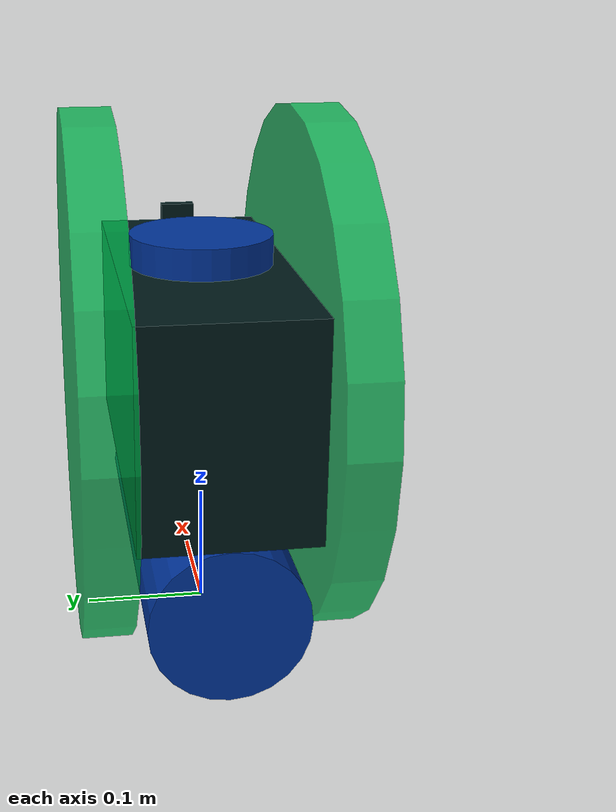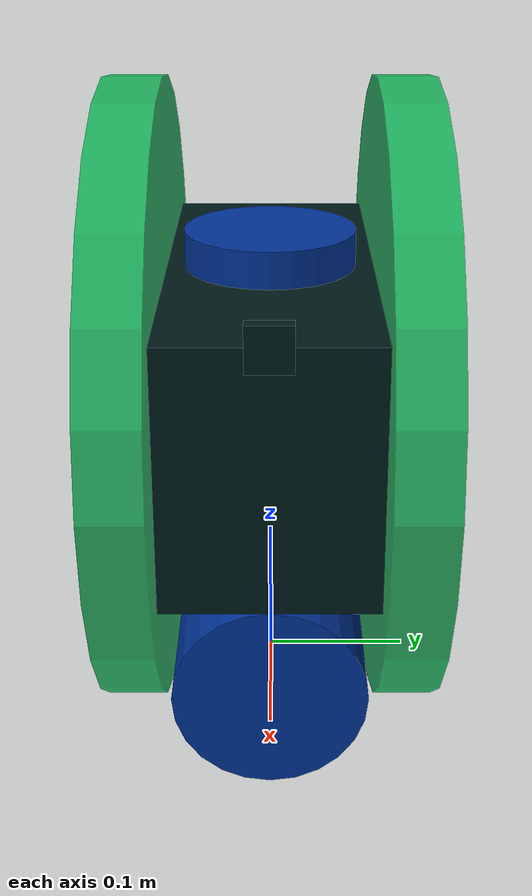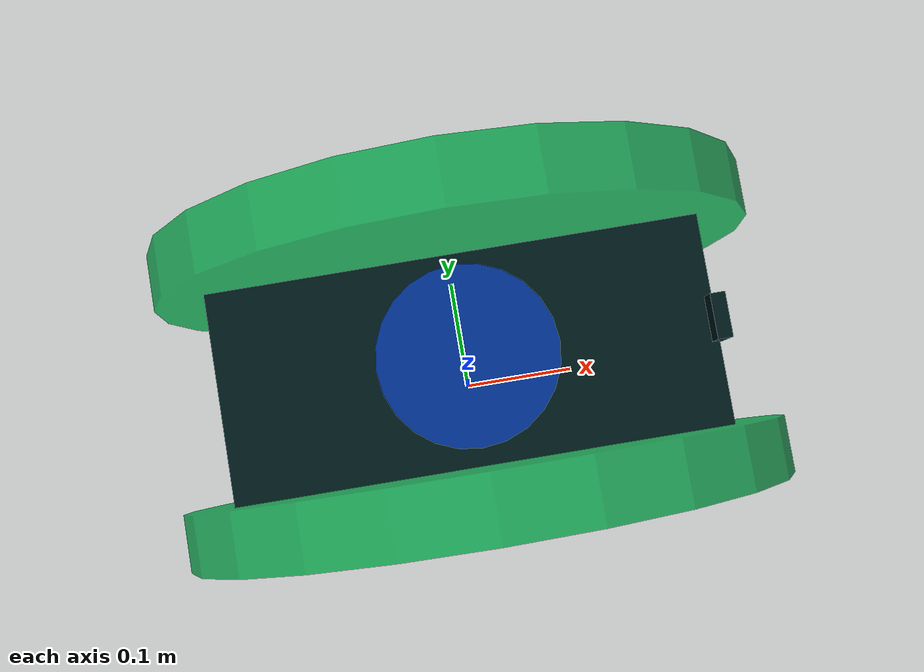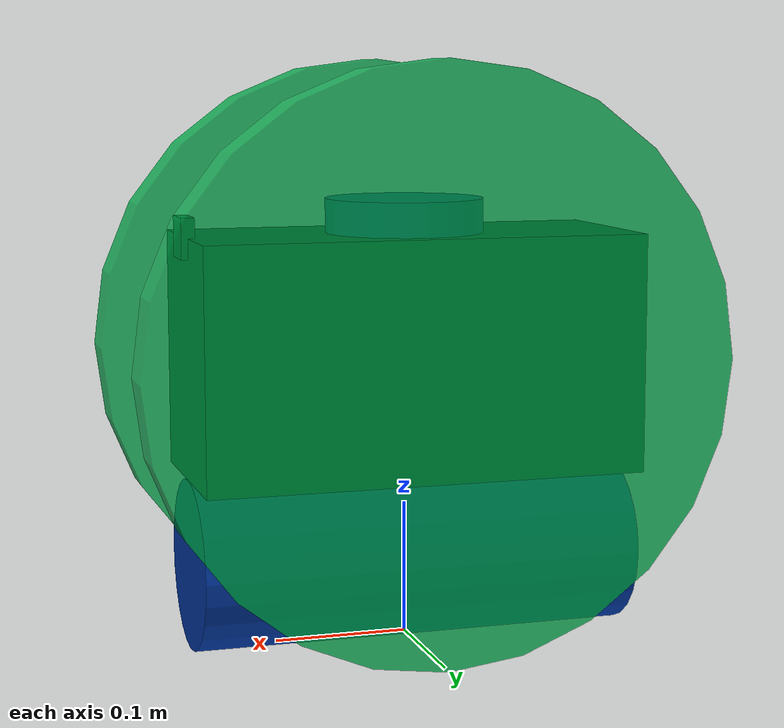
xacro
<?xml version="1.0"?>
<robot xmlns:xacro="http://www.ros.org/wiki/xacro"  name="robot">

    <xacro:include filename="inertial_macros.xacro"/>

    <xacro:property name="ratio" value="0.0254"/>
    <xacro:property name="chassis_length" value="13.00"/>
    <xacro:property name="chassis_width" value="5.5625"/>
    <xacro:property name="chassis_height" value="7.00"/>
    <xacro:property name="chassis_mass" value="3.0"/>
    <xacro:property name="valve_radius" value="2.5"/>
    <xacro:property name="wheel_radius" value="8.50"/>
    <xacro:property name="wheel_thickness" value="1.5625"/>
    <xacro:property name="wheel_mass" value="0.5"/>
    <xacro:property name="wheel_offset_x" value="0.226"/>
    <xacro:property name="wheel_offset_y" value="${chassis_width*ratio/2}"/>
    <xacro:property name="wheel_offset_z" value="${wheel_radius*ratio}"/>

    <material name="green">
        <color rgba="0 0.7 0.3 0.8" />
    </material>

    <material name="blue">
        <color rgba="0 0.2 0.6 0.9"/>
    </material>

    <material name="black">
        <color rgba="0 0.1 0.1 1"/>
    </material>

    <!-- BASE LINK -->

    <link name="base_link">

    </link>

    <!-- BASE_FOOTPRINT LINK -->

    <joint name="base_footprint_joint" type="fixed">
        <parent link="base_link"/>
        <child link="base_footprint"/>
        <origin xyz="0 0 0" rpy="0 0 0"/>
    </joint>

    <link name="base_footprint">

    </link>

    <!-- CHASSIS LINK -->

    <joint name="chassis_joint" type="fixed">
        <parent link="base_link"/>
        <child link="chassis"/>
        <origin xyz="0 0 ${wheel_offset_z}"/>
    </joint>

    <link name="chassis">
        <visual>
            <origin xyz="0 0 0"/>
            <geometry>
                <box size="${chassis_length*ratio} ${chassis_width*ratio} ${chassis_height*ratio}"/>
            </geometry>
            <material name="black"/>
        </visual>
        <collision>
            <geometry>
                <box size="${(chassis_length+2)*ratio} ${chassis_width*ratio} ${chassis_height*ratio}"/>
            </geometry>
        </collision>
        <xacro:inertial_box mass="1.18" x="${chassis_length}" y="${chassis_width}" z="${chassis_height}">
            <origin xyz="0 0 ${wheel_offset_z}" rpy="0 0 0"/>
        </xacro:inertial_box>
    </link>

    <gazebo reference="chassis">
        <material>Gazebo/Grey</material>
    </gazebo>

    <!-- LEFT WHEEL LINK -->

    <joint name="left_wheel_joint" type="continuous">
        <parent link="chassis"/>
        <child link="left_wheel"/>
        <origin xyz="0 ${wheel_offset_y+wheel_thickness*ratio/2} 0" rpy="${-pi/2} 0 0" />
        <axis xyz="0 0 1"/>
    </joint>

    <link name="left_wheel">
        <visual>
            <geometry>
                <cylinder radius="${wheel_radius*ratio}" length="${wheel_thickness*ratio}"/>
            </geometry>
            <material name="green"/>
        </visual>
        <collision>
            <geometry>
                <cylinder radius="${wheel_radius*ratio}" length="${wheel_thickness*ratio}"/>
            </geometry>
        </collision>
        <xacro:inertial_cylinder mass="${wheel_mass}" length="${wheel_thickness*ratio}" radius="${wheel_radius*ratio}">
            <origin xyz="0 0 0" rpy="0 0 0"/>
        </xacro:inertial_cylinder>
    </link>

    <gazebo reference="left_wheel">
        <material>Gazebo/Green</material>
    </gazebo>

    <!-- RIGHT WHEEL LINK -->

    <joint name="right_wheel_joint" type="continuous">
        <parent link="chassis"/>
        <child link="right_wheel"/>
        <origin xyz="0 ${-wheel_offset_y-wheel_thickness*ratio/2} 0" rpy="${pi/2} 0 0" />
        <axis xyz="0 0 -1"/>
    </joint>

    <link name="right_wheel">
        <visual>
            <geometry>
                <cylinder radius="${wheel_radius*ratio}" length="${wheel_thickness*ratio}"/>
            </geometry>
            <material name="green"/>
        </visual>
        <collision>
            <geometry>
                <cylinder radius="${wheel_radius*ratio}" length="${wheel_thickness*ratio}"/>
            </geometry>
        </collision>
        <xacro:inertial_cylinder mass="${wheel_mass}" length="${wheel_thickness*ratio}" radius="${wheel_radius*ratio}">
            <origin xyz="0 0 0" rpy="0 0 0"/>
        </xacro:inertial_cylinder>
    </link>

    <gazebo reference="right_wheel">
        <material>Gazebo/Green</material>
    </gazebo>

    <!-- LIDAR LINK -->

    <joint name="laser_joint" type="fixed">
        <parent link="chassis"/>
        <child link="base_laser"/>
        <origin xyz="0 0 ${ratio*(chassis_height+1.00)/2}" rpy="0 0 0"/>
    </joint>

    <link name="base_laser">
        <visual>
            <geometry>
                <cylinder radius="${2.3125*ratio}" length="${1.00*ratio}"/>
            </geometry>
            <material name="blue"/>
        </visual>
    </link>

    <gazebo reference="base_laser">
        <material>Gazebo/Purple</material>
    </gazebo>

    <!-- VALVE LINK-->

    <joint name="valve_base_joint" type="fixed">
        <parent link="chassis"/>
        <child link="valve_frame"/>
        <origin xyz="0 0 ${-ratio*(chassis_height/2.0+valve_radius)}" rpy="0 ${pi/2.0} 0"/>
    </joint>

    <link name="valve_frame">
        <visual>
            <geometry>
                <cylinder radius="${valve_radius*ratio}" length="${chassis_length*ratio}"/>
            </geometry>
            <material name="blue"/>
        </visual>
    </link>

    <gazebo reference="valve_frame">
        <material>Gazebo/Blue</material>
        <mu1 value="0.001"/>
        <mu2 value="0.001"/>
    </gazebo>

    <!-- CAMERA LINK -->

    <joint name="camera_joint" type="fixed">
        <parent link="chassis"/>
        <child link="camera_link"/>
        <origin xyz="${ratio*(chassis_length)/2} 0 ${ratio*(chassis_height)/2}" rpy="0 0 0"/>
    </joint>

    <link name="camera_link">
        <visual>
            <geometry>
                <box size="0.010 0.03 0.03"/>
            </geometry>
            <material name="black"/>
        </visual>
    </link>

    <joint name="camera_optical_joint" type="fixed">
        <parent link="camera_link"/>
        <child link="camera_link_optical"/>
        <origin xyz="0 0 0" rpy="${-pi/2} 0 ${-pi/2}"/>
    </joint>

    <link name="camera_link_optical"></link>

    <gazebo reference="camera_link">
        <material>Gazebo/Black</material>

        <sensor name="camera" type="camera">
            <pose> 0 0 0 0 0 0 </pose>
            <visualize>true</visualize>
            <update_rate>10</update_rate>
            <camera>
                <horizontal_fov>1.089</horizontal_fov>
                <image>
                    <format>R8G8B8</format>
                    <width>640</width>
                    <height>480</height>
                </image>
                <clip>
                    <near>0.05</near>
                    <far>8.0</far>
                </clip>
            </camera>
            <plugin name="camera_controller" filename="libgazebo_ros_camera.so">
                <frame_name>camera_link_optical</frame_name>
            </plugin>
        </sensor>
    </gazebo>

</robot>
